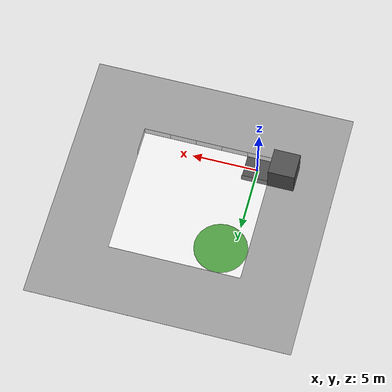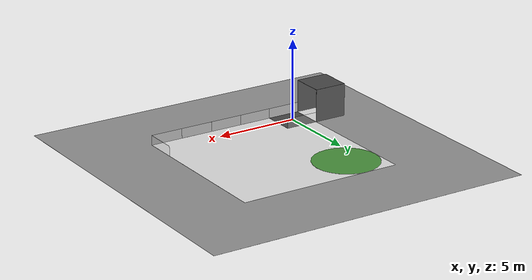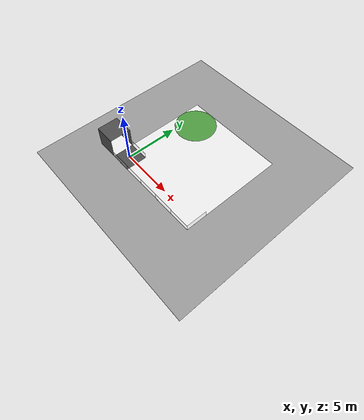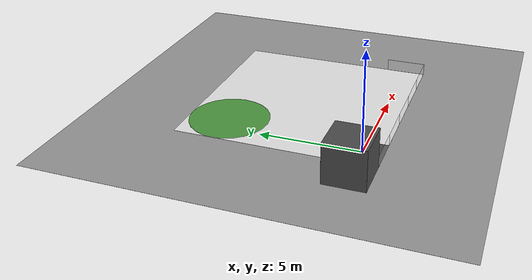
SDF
<sdf version="1.5">
 <world name="wrs_fcsc2020">
  <scene><ambient>0.6 0.6 0.6 1</ambient><sky><clouds><speed>0.6</speed></clouds></sky></scene>
  <physics type="ode">
   <max_step_size>0.001</max_step_size>
   <real_time_factor>1</real_time_factor>
   <real_time_update_rate>1000</real_time_update_rate>
   <gravity>0 0 -9.8</gravity>
  </physics>
  <include><uri>model://sun</uri></include>
  <include><uri>model://wrs_fcsc2020_floor_home</uri></include>
  <include><uri>model://wrs_fcsc2020_floor_inside</uri><pose>4 4 -0.001 0 0 0</pose></include>
  <include><uri>model://wrs_fcsc2020_floor_outside</uri><pose>4 4 -0.002 0 0 0</pose></include>
  <include><uri>model://wrs_fcsc2020_floor_playground</uri><pose>1 7 0 0 0 0</pose></include>
  <include><uri>model://wrs_fcsc2020_floor_restroom</uri><pose>-2 0 0 0 0 0</pose></include>
  <model name="wrs_fcsc2020_ceiling_restroom">
   <include><uri>model://wrs_fcsc2020_floor_home</uri><pose>-2 0 2 0 0 0</pose></include>
  </model>
  <model name="wrs_fcsc2020_wall_restroom_a">
   <include><uri>model://wrs_fcsc2020_wall_restroom</uri><pose>-2 -1 1 0 0 1.57079632679</pose></include>
  </model>
  <model name="wrs_fcsc2020_wall_restroom_b">
   <include><uri>model://wrs_fcsc2020_wall_restroom</uri><pose>-3 0 1 0 0 0</pose></include>
  </model>
  <model name="wrs_fcsc2020_wall_restroom_c">
   <include><uri>model://wrs_fcsc2020_wall_restroom</uri><pose>-2 1 1 0 0 1.57079632679</pose></include>
  </model>
  <model name="wrs_fcsc2020_wall_outside_a">
   <include><uri>model://wrs_fcsc2020_wall_outside</uri><pose>0 -1 0.3 0 0 0</pose></include>
  </model>
  <model name="wrs_fcsc2020_wall_outside_b">
   <include><uri>model://wrs_fcsc2020_wall_outside</uri><pose>2 -1 0.3 0 0 0</pose></include>
  </model>
  <model name="wrs_fcsc2020_wall_outside_c">
   <include><uri>model://wrs_fcsc2020_wall_outside</uri><pose>4 -1 0.3 0 0 0</pose></include>
  </model>
  <model name="wrs_fcsc2020_wall_outside_d">
   <include><uri>model://wrs_fcsc2020_wall_outside</uri><pose>6 -1 0.3 0 0 0</pose></include>
  </model>
  <model name="wrs_fcsc2020_wall_outside_e">
   <include><uri>model://wrs_fcsc2020_wall_outside</uri><pose>8 -1 0.3 0 0 0</pose></include>
  </model>
  <model name="wrs_fcsc2020_wall_outside_f">
   <include><uri>model://wrs_fcsc2020_wall_outside</uri><pose>0 1 0.3 0 0 0</pose></include>
  </model>
  <model name="wrs_fcsc2020_wall_outside_g">
   <include><uri>model://wrs_fcsc2020_wall_outside</uri><pose>9 0 0.3 0 0 1.57079632679</pose></include>
  </model>
 </world>
</sdf>

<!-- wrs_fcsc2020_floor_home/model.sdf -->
<sdf version="1.5">
  <model name="wrs_fcsc2020_wall_restroom">
    <static>1</static>
    <link name="link">
      <visual name="visual">
        <geometry>
          <box>
            <size>2 2 0.002</size>
          </box>
        </geometry>
        <material>
          <script>
            <uri>file://media/materials/scripts/gazebo.material</uri>
            <name>Gazebo/DarkGrey</name>
          </script>
        </material>
      </visual>
    </link>
  </model>
</sdf>

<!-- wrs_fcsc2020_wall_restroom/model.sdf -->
<sdf version="1.5">
  <model name="wrs_fcsc2020_wall_restroom">
    <static>1</static>
    <link name="link">
      <visual name="visual">
        <geometry>
          <box>
            <size>0.002 2 2</size>
          </box>
        </geometry>
        <material>
          <script>
            <uri>file://media/materials/scripts/gazebo.material</uri>
            <name>Gazebo/DarkGrey</name>
          </script>
        </material>
      </visual>
      <collision name="collision">
        <geometry>
          <box>
            <size>0.002 2 2</size>
          </box>
        </geometry>
      </collision>
    </link>
  </model>
</sdf>

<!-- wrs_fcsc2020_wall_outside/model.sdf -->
<sdf version="1.5">
  <model name="wrs_fcsc2020_wall_outside">
    <static>1</static>
    <link name="link">
      <visual name="visual">
        <geometry>
          <box>
            <size>2 0.002 0.6</size>
          </box>
        </geometry>
        <material>
          <script>
            <uri>file://media/materials/scripts/gazebo.material</uri>
            <name>Gazebo/White</name>
          </script>
        </material>
        <transparency>0.9</transparency>
      </visual>
      <collision name="collision">
        <geometry>
          <box>
            <size>2 0.002 0.6</size>
          </box>
        </geometry>
      </collision>
    </link>
  </model>
</sdf>

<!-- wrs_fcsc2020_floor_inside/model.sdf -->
<sdf version="1.5">
  <model name="wrs_fcsc2020_floor_inside">
    <static>1</static>
    <link name="link">
      <visual name="visual">
        <geometry>
          <box>
            <size>10 10 0.002</size>
          </box>
        </geometry>
        <material>
          <script>
            <uri>file://media/materials/scripts/gazebo.material</uri>
            <name>Gazebo/White</name>
          </script>
        </material>
      </visual>
      <collision name="collision">
        <geometry>
          <box>
            <size>10 10 0.002</size>
          </box>
        </geometry>
      </collision>
    </link>
  </model>
</sdf>

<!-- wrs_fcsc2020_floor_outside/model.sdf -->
<sdf version="1.5">
  <model name="wrs_fcsc2020_floor_outside">
    <static>1</static>
    <link name="link">
      <visual name="visual">
        <geometry>
          <box>
            <size>20 20 0.002</size>
          </box>
        </geometry>
        <material>
          <script>
            <uri>file://media/materials/scripts/gazebo.material</uri>
            <name>Gazebo/Grey</name>
          </script>
        </material>
      </visual>
      <collision name="collision">
        <geometry>
          <box>
            <size>20 20 0.002</size>
          </box>
        </geometry>
      </collision>
    </link>
  </model>
</sdf>

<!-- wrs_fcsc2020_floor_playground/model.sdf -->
<sdf version="1.5">
  <model name="wrs_fcsc2020_floor_playground">
    <static>1</static>
    <link name="link">
      <visual name="visual">
        <geometry>
          <cylinder>
            <radius>2</radius>
            <length>0.002</length>
          </cylinder>
        </geometry>
        <material>
          <script>
            <uri>file://media/materials/scripts/gazebo.material</uri>
            <name>Gazebo/Grass</name>
          </script>
        </material>
      </visual>
    </link>
  </model>
</sdf>

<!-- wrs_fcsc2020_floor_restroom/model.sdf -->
<sdf version="1.5">
  <model name="wrs_fcsc2020_floor_restroom">
    <static>1</static>
    <link name="link">
      <visual name="visual">
        <geometry>
          <box>
            <size>2 2 0.002</size>
          </box>
        </geometry>
        <material>
          <script>
            <uri>file://media/materials/scripts/gazebo.material</uri>
            <name>Gazebo/White</name>
          </script>
        </material>
      </visual>
    </link>
  </model>
</sdf>
